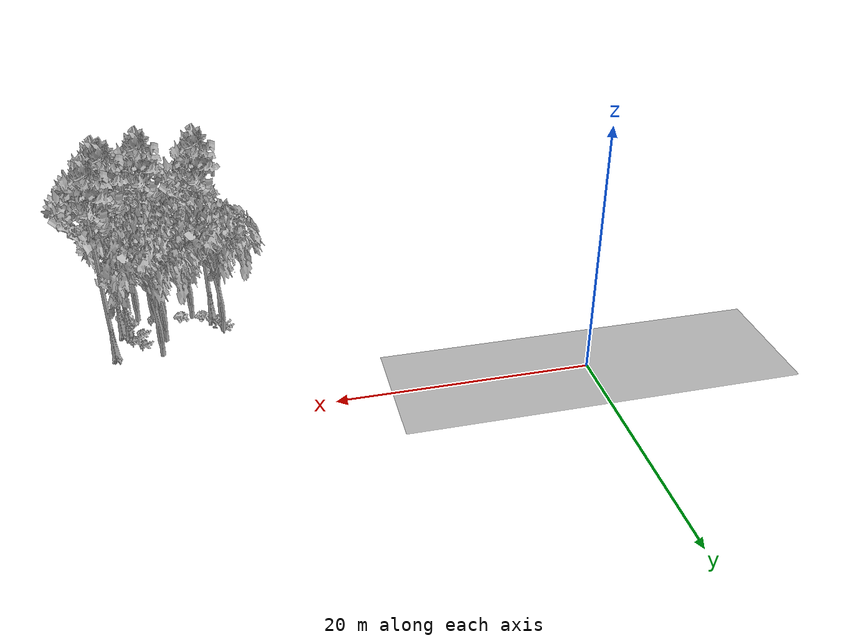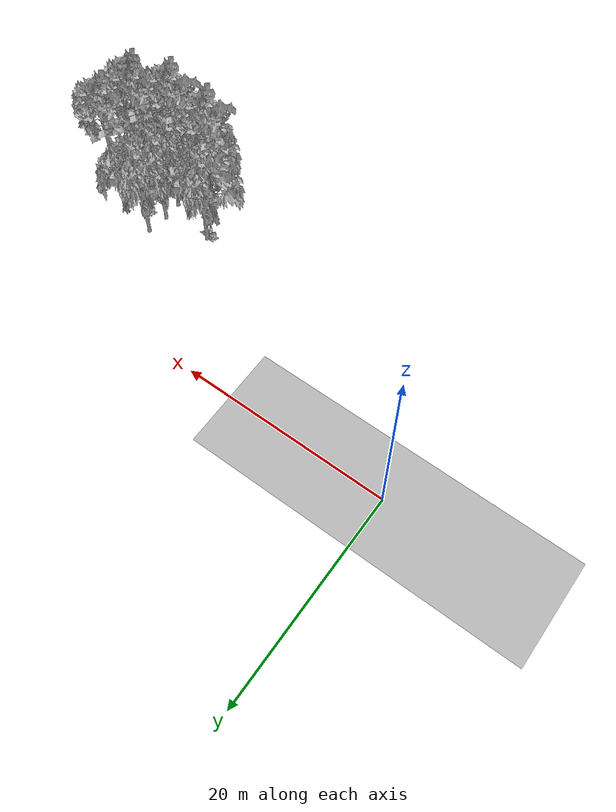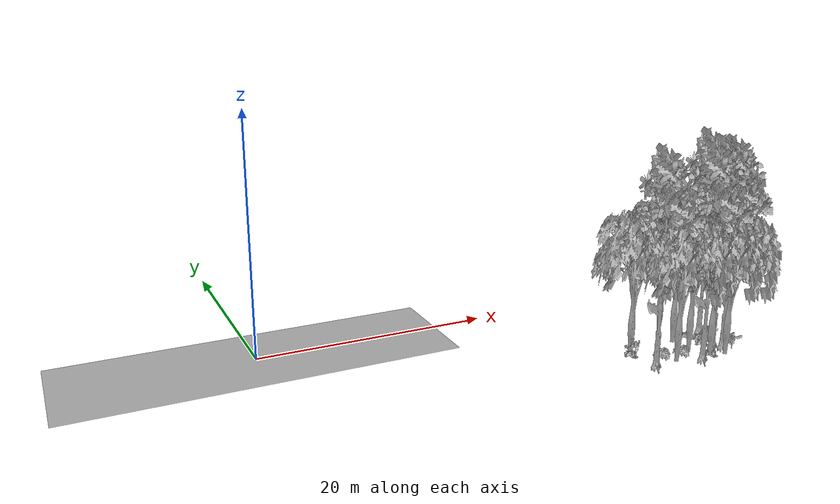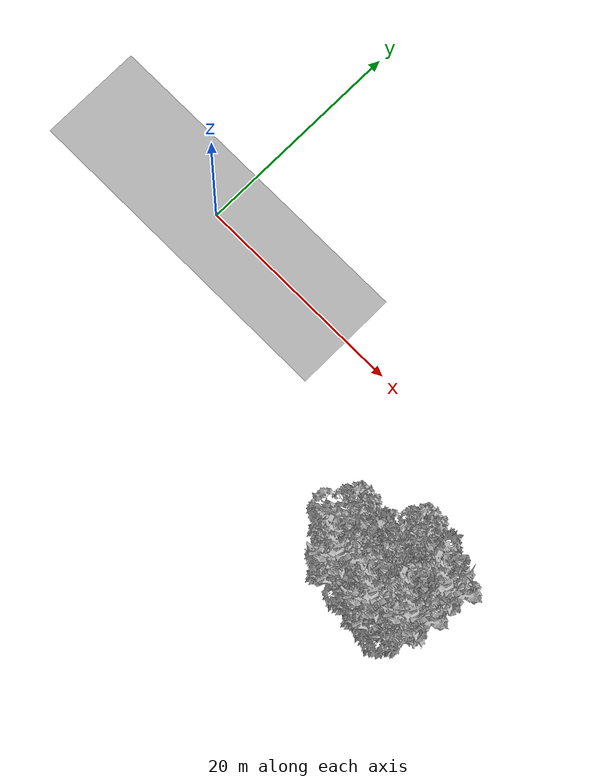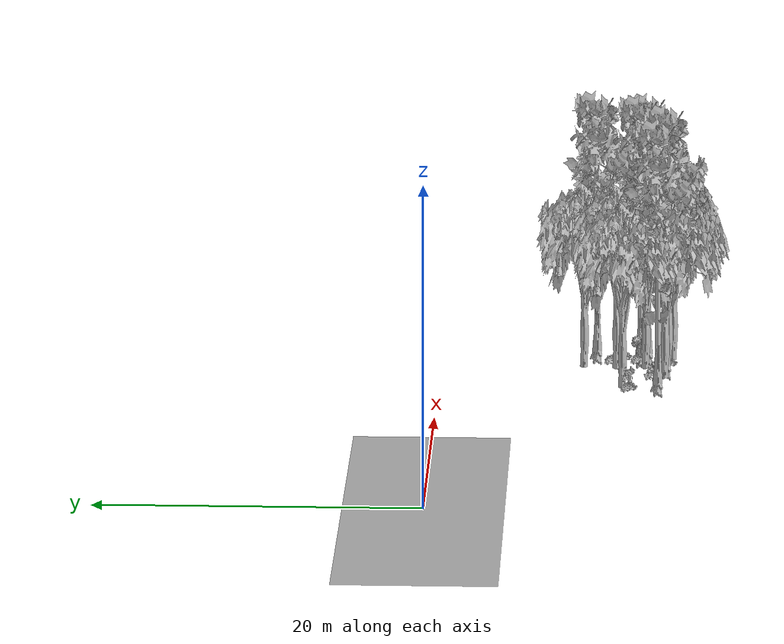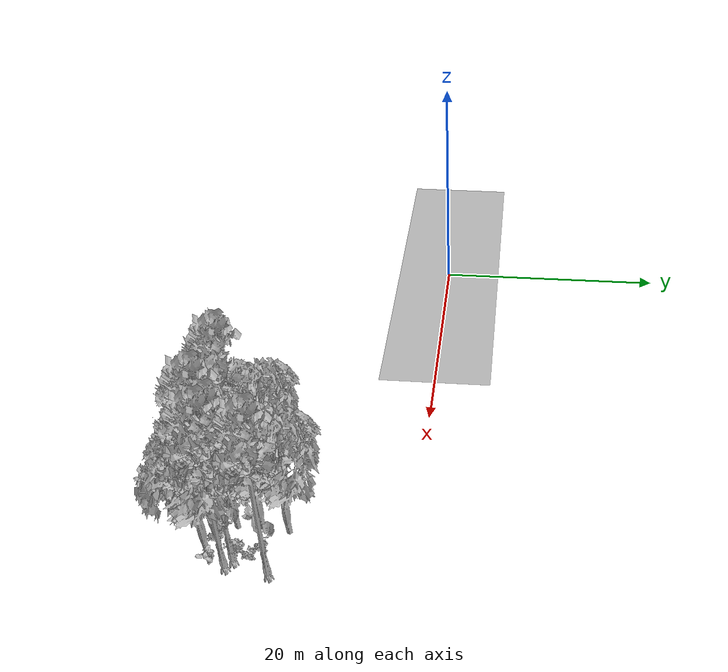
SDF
<sdf version="1.7">
 <world name="default">
  <model name="ground_plane">
   <static>1</static>
   <link name="link">
    <collision name="collision">
     <geometry><plane><normal>0 0 1</normal><size>100 100</size></plane></geometry>
     <surface><contact><ode><min_depth>0.01</min_depth><max_vel>0</max_vel></ode></contact></surface>
    </collision>
    <visual name="grass">
     <cast_shadows>0</cast_shadows>
     <geometry>
      <mesh>
       <scale>0.5814285714285714 0.18142857142857144 0.1</scale>
       <uri>file://grass_plane/meshes/grass_plane.dae</uri>
      </mesh>
     </geometry>
    </visual>
   </link>
  </model>
  <model name="Tree 35">
   <static>1</static>
   <pose>32.20575930937464 -11.317423207755585 0 1.57079 -0 0</pose>
   <link name="link">
    <collision name="collision">
     <geometry><mesh><scale>3.5 5 3.5</scale><uri>model://tree_2/meshes/tree_2.obj</uri></mesh></geometry>
    </collision>
    <visual name="visual">
     <geometry><mesh><scale>3.5 5 3.5</scale><uri>model://tree_2/meshes/tree_2.obj</uri></mesh></geometry>
    </visual>
   </link>
  </model>
  <model name="Tree 107">
   <static>1</static>
   <pose>28.482193780051304 -13.970230087644504 0 1.57079 -0 0</pose>
   <link name="link">
    <collision name="collision">
     <geometry><mesh><scale>3.5 5 3.5</scale><uri>model://tree_9/meshes/tree_9.obj</uri></mesh></geometry>
    </collision>
    <visual name="visual">
     <geometry><mesh><scale>3.5 5 3.5</scale><uri>model://tree_9/meshes/tree_9.obj</uri></mesh></geometry>
    </visual>
   </link>
  </model>
  <model name="Tree 136">
   <static>1</static>
   <pose>27.57151424503307 -11.723013848602506 0 1.57079 -0 0</pose>
   <link name="link">
    <collision name="collision">
     <geometry><mesh><scale>3.5 5 3.5</scale><uri>model://tree_2/meshes/tree_2.obj</uri></mesh></geometry>
    </collision>
    <visual name="visual">
     <geometry><mesh><scale>3.5 5 3.5</scale><uri>model://tree_2/meshes/tree_2.obj</uri></mesh></geometry>
    </visual>
   </link>
  </model>
  <model name="Tree 205">
   <static>1</static>
   <pose>32.70871977923345 -14.49363034236037 0 1.57079 -0 0</pose>
   <link name="link">
    <collision name="collision">
     <geometry><mesh><scale>3.5 5 3.5</scale><uri>model://tree_9/meshes/tree_9.obj</uri></mesh></geometry>
    </collision>
    <visual name="visual">
     <geometry><mesh><scale>3.5 5 3.5</scale><uri>model://tree_9/meshes/tree_9.obj</uri></mesh></geometry>
    </visual>
   </link>
  </model>
  <model name="Tree 213">
   <static>1</static>
   <pose>35.25570284134331 -12.825953121679587 0 1.57079 -0 0</pose>
   <link name="link">
    <collision name="collision">
     <geometry><mesh><scale>3.5 5 3.5</scale><uri>model://tree_9/meshes/tree_9.obj</uri></mesh></geometry>
    </collision>
    <visual name="visual">
     <geometry><mesh><scale>3.5 5 3.5</scale><uri>model://tree_9/meshes/tree_9.obj</uri></mesh></geometry>
    </visual>
   </link>
  </model>
  <model name="Tree 235">
   <static>1</static>
   <pose>35.84759947368663 -13.305726569994343 0 1.57079 -0 0</pose>
   <link name="link">
    <collision name="collision">
     <geometry><mesh><scale>3.5 5 3.5</scale><uri>model://tree_9/meshes/tree_9.obj</uri></mesh></geometry>
    </collision>
    <visual name="visual">
     <geometry><mesh><scale>3.5 5 3.5</scale><uri>model://tree_9/meshes/tree_9.obj</uri></mesh></geometry>
    </visual>
   </link>
  </model>
  <model name="Tree 307">
   <static>1</static>
   <pose>33.24589869672944 -14.628455775226405 0 1.57079 -0 0</pose>
   <link name="link">
    <collision name="collision">
     <geometry><mesh><scale>3.5 5 3.5</scale><uri>model://tree_2/meshes/tree_2.obj</uri></mesh></geometry>
    </collision>
    <visual name="visual">
     <geometry><mesh><scale>3.5 5 3.5</scale><uri>model://tree_2/meshes/tree_2.obj</uri></mesh></geometry>
    </visual>
   </link>
  </model>
  <model name="Tree 364">
   <static>1</static>
   <pose>32.48593824926387 -9.228251115459509 0 1.57079 -0 0</pose>
   <link name="link">
    <collision name="collision">
     <geometry><mesh><scale>3.5 5 3.5</scale><uri>model://tree_2/meshes/tree_2.obj</uri></mesh></geometry>
    </collision>
    <visual name="visual">
     <geometry><mesh><scale>3.5 5 3.5</scale><uri>model://tree_2/meshes/tree_2.obj</uri></mesh></geometry>
    </visual>
   </link>
  </model>
  <model name="Tree 369">
   <static>1</static>
   <pose>32.29190010318064 -13.1866642973264 0 1.57079 -0 0</pose>
   <link name="link">
    <collision name="collision">
     <geometry><mesh><scale>3.5 5 3.5</scale><uri>model://tree_2/meshes/tree_2.obj</uri></mesh></geometry>
    </collision>
    <visual name="visual">
     <geometry><mesh><scale>3.5 5 3.5</scale><uri>model://tree_2/meshes/tree_2.obj</uri></mesh></geometry>
    </visual>
   </link>
  </model>
  <model name="Tree 392">
   <static>1</static>
   <pose>34.52118906640476 -14.954911931617039 0 1.57079 -0 0</pose>
   <link name="link">
    <collision name="collision">
     <geometry><mesh><scale>3.5 5 3.5</scale><uri>model://tree_2/meshes/tree_2.obj</uri></mesh></geometry>
    </collision>
    <visual name="visual">
     <geometry><mesh><scale>3.5 5 3.5</scale><uri>model://tree_2/meshes/tree_2.obj</uri></mesh></geometry>
    </visual>
   </link>
  </model>
  <model name="Tree 397">
   <static>1</static>
   <pose>36.27546695134045 -10.020004242256203 0 1.57079 -0 0</pose>
   <link name="link">
    <collision name="collision">
     <geometry><mesh><scale>3.5 5 3.5</scale><uri>model://tree_9/meshes/tree_9.obj</uri></mesh></geometry>
    </collision>
    <visual name="visual">
     <geometry><mesh><scale>3.5 5 3.5</scale><uri>model://tree_9/meshes/tree_9.obj</uri></mesh></geometry>
    </visual>
   </link>
  </model>
  <model name="Tree 400">
   <static>1</static>
   <pose>30.045291503855893 -14.415860888854509 0 1.57079 -0 0</pose>
   <link name="link">
    <collision name="collision">
     <geometry><mesh><scale>3.5 5 3.5</scale><uri>model://tree_2/meshes/tree_2.obj</uri></mesh></geometry>
    </collision>
    <visual name="visual">
     <geometry><mesh><scale>3.5 5 3.5</scale><uri>model://tree_2/meshes/tree_2.obj</uri></mesh></geometry>
    </visual>
   </link>
  </model>
  <model name="Bush 1">
   <static>1</static>
   <pose>35.81777305684473 -14.405251334646348 0 1.57079 -0 0</pose>
   <link name="link">
    <collision name="collision">
     <geometry><mesh><scale>2 2 2</scale><uri>model://bush_0/meshes/bush_0.obj</uri></mesh></geometry>
     <surface><contact><collide_without_contact>false</collide_without_contact></contact></surface>
    </collision>
    <visual name="visual">
     <geometry><mesh><scale>2 2 2</scale><uri>model://bush_0/meshes/bush_0.obj</uri></mesh></geometry>
    </visual>
   </link>
  </model>
  <model name="Bush 4">
   <static>1</static>
   <pose>34.72937981519766 -11.776893674899174 0 1.57079 -0 0</pose>
   <link name="link">
    <collision name="collision">
     <geometry><mesh><scale>2 2 2</scale><uri>model://bush_2/meshes/bush_2.obj</uri></mesh></geometry>
     <surface><contact><collide_without_contact>false</collide_without_contact></contact></surface>
    </collision>
    <visual name="visual">
     <geometry><mesh><scale>2 2 2</scale><uri>model://bush_2/meshes/bush_2.obj</uri></mesh></geometry>
    </visual>
   </link>
  </model>
  <model name="Bush 76">
   <static>1</static>
   <pose>34.96128639236615 -12.585395380858849 0 1.57079 -0 0</pose>
   <link name="link">
    <collision name="collision">
     <geometry><mesh><scale>2 2 2</scale><uri>model://bush_5/meshes/bush_5.obj</uri></mesh></geometry>
     <surface><contact><collide_without_contact>false</collide_without_contact></contact></surface>
    </collision>
    <visual name="visual">
     <geometry><mesh><scale>2 2 2</scale><uri>model://bush_5/meshes/bush_5.obj</uri></mesh></geometry>
    </visual>
   </link>
  </model>
  <model name="Bush 102">
   <static>1</static>
   <pose>29.35617415336438 -13.664626685249821 0 1.57079 -0 0</pose>
   <link name="link">
    <collision name="collision">
     <geometry><mesh><scale>2 2 2</scale><uri>model://bush_3/meshes/bush_3.obj</uri></mesh></geometry>
     <surface><contact><collide_without_contact>false</collide_without_contact></contact></surface>
    </collision>
    <visual name="visual">
     <geometry><mesh><scale>2 2 2</scale><uri>model://bush_3/meshes/bush_3.obj</uri></mesh></geometry>
    </visual>
   </link>
  </model>
  <model name="Bush 120">
   <static>1</static>
   <pose>27.72598763097274 -12.010239070812595 0 1.57079 -0 0</pose>
   <link name="link">
    <collision name="collision">
     <geometry><mesh><scale>2 2 2</scale><uri>model://bush_4/meshes/bush_4.obj</uri></mesh></geometry>
     <surface><contact><collide_without_contact>false</collide_without_contact></contact></surface>
    </collision>
    <visual name="visual">
     <geometry><mesh><scale>2 2 2</scale><uri>model://bush_4/meshes/bush_4.obj</uri></mesh></geometry>
    </visual>
   </link>
  </model>
  <model name="Bush 126">
   <static>1</static>
   <pose>33.31504959299511 -14.705071014727029 0 1.57079 -0 0</pose>
   <link name="link">
    <collision name="collision">
     <geometry><mesh><scale>2 2 2</scale><uri>model://bush_2/meshes/bush_2.obj</uri></mesh></geometry>
     <surface><contact><collide_without_contact>false</collide_without_contact></contact></surface>
    </collision>
    <visual name="visual">
     <geometry><mesh><scale>2 2 2</scale><uri>model://bush_2/meshes/bush_2.obj</uri></mesh></geometry>
    </visual>
   </link>
  </model>
  <model name="Bush 147">
   <static>1</static>
   <pose>31.09755850545416 -13.928284235477973 0 1.57079 -0 0</pose>
   <link name="link">
    <collision name="collision">
     <geometry><mesh><scale>2 2 2</scale><uri>model://bush_3/meshes/bush_3.obj</uri></mesh></geometry>
     <surface><contact><collide_without_contact>false</collide_without_contact></contact></surface>
    </collision>
    <visual name="visual">
     <geometry><mesh><scale>2 2 2</scale><uri>model://bush_3/meshes/bush_3.obj</uri></mesh></geometry>
    </visual>
   </link>
  </model>
  <model name="Bush 155">
   <static>1</static>
   <pose>27.392082043141286 -12.157509813828554 0 1.57079 -0 0</pose>
   <link name="link">
    <collision name="collision">
     <geometry><mesh><scale>2 2 2</scale><uri>model://bush_2/meshes/bush_2.obj</uri></mesh></geometry>
     <surface><contact><collide_without_contact>false</collide_without_contact></contact></surface>
    </collision>
    <visual name="visual">
     <geometry><mesh><scale>2 2 2</scale><uri>model://bush_2/meshes/bush_2.obj</uri></mesh></geometry>
    </visual>
   </link>
  </model>
  <model name="Bush 171">
   <static>1</static>
   <pose>34.15124045459896 -12.746234858936234 0 1.57079 -0 0</pose>
   <link name="link">
    <collision name="collision">
     <geometry><mesh><scale>2 2 2</scale><uri>model://bush_2/meshes/bush_2.obj</uri></mesh></geometry>
     <surface><contact><collide_without_contact>false</collide_without_contact></contact></surface>
    </collision>
    <visual name="visual">
     <geometry><mesh><scale>2 2 2</scale><uri>model://bush_2/meshes/bush_2.obj</uri></mesh></geometry>
    </visual>
   </link>
  </model>
  <model name="Bush 327">
   <static>1</static>
   <pose>33.96136483924289 -11.056340431874931 0 1.57079 -0 0</pose>
   <link name="link">
    <collision name="collision">
     <geometry><mesh><scale>2 2 2</scale><uri>model://bush_2/meshes/bush_2.obj</uri></mesh></geometry>
     <surface><contact><collide_without_contact>false</collide_without_contact></contact></surface>
    </collision>
    <visual name="visual">
     <geometry><mesh><scale>2 2 2</scale><uri>model://bush_2/meshes/bush_2.obj</uri></mesh></geometry>
    </visual>
   </link>
  </model>
 </world>
</sdf>
